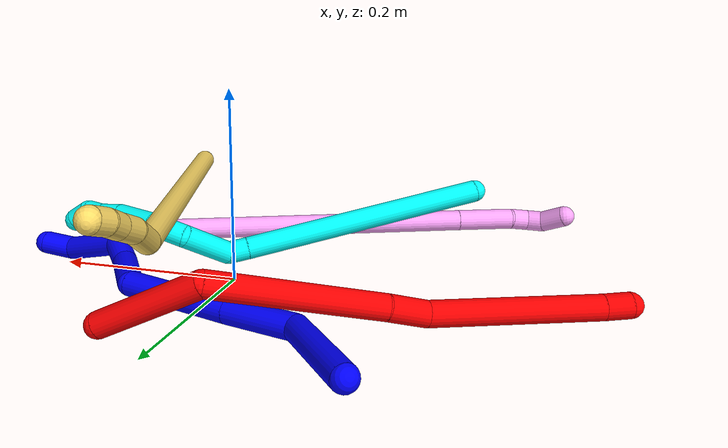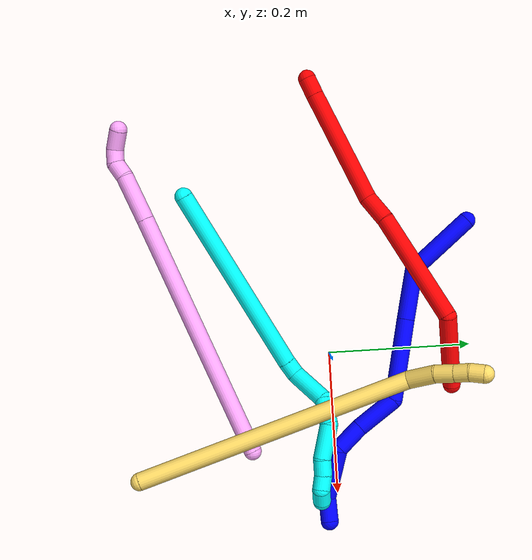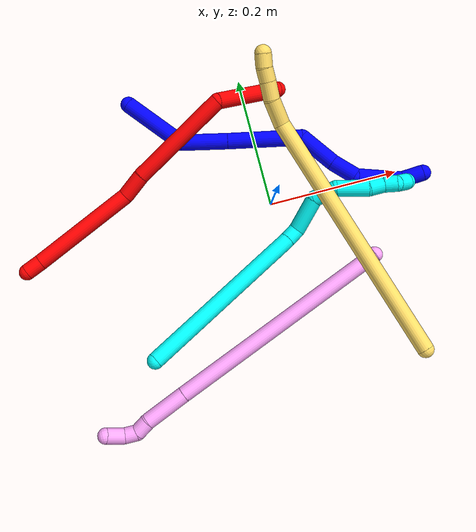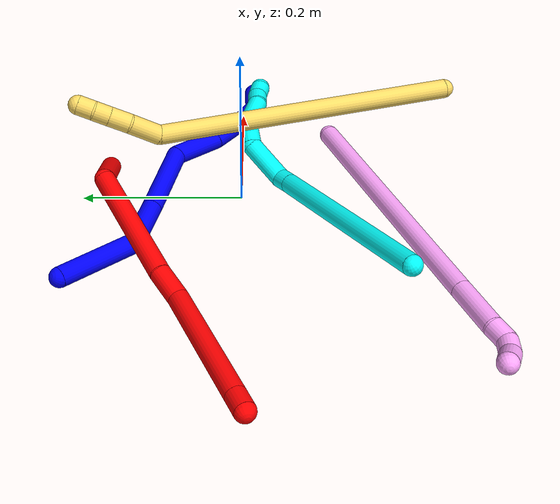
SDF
<sdf version="1.7">
 <world name="default">
  <plugin name="TubeGeneratorPlugin" filename="libtube_generator_plugin.so"/>
  <model name="photoneo_s_sensor">
   <static>1</static>
   <pose>0 0 2 1.57079 1.57079 3.14159</pose>
   <link name="link">
    <inertial><mass>0.1</mass></inertial>
    <sensor name="sensor" type="depth">
     <update_rate>30</update_rate>
     <camera>
      <horizontal_fov>1.22</horizontal_fov>
      <image><width>1920</width><height>1200</height><format>B8G8R8</format></image>
      <clip><near>0.1</near><far>4</far></clip>
      <depth_camera><output>points</output></depth_camera>
     </camera>
     <plugin name="camera_plugin" filename="libgazebo_ros_depth_camera.so">
      <baseline>0.2</baseline>
      <alwaysOn>1</alwaysOn>
      <updateRate>0.0</updateRate>
      <cameraName>camera_ir</cameraName>
      <imageTopicName>/camera/color/image_raw</imageTopicName>
      <cameraInfoTopicName>/camera/color/camera_info</cameraInfoTopicName>
      <depthImageTopicName>/camera/depth/image_raw</depthImageTopicName>
      <depthImageCameraInfoTopicName>/camera/depth/camera_info</depthImageCameraInfoTopicName>
      <pointCloudTopicName>/camera/depth/points</pointCloudTopicName>
      <frameName>fr_optical</frameName>
      <pointCloudCutoff>0.1</pointCloudCutoff>
      <pointCloudCutoffMax>2.0</pointCloudCutoffMax>
      <distortionK1>0</distortionK1>
      <distortionK2>0</distortionK2>
      <distortionK3>0</distortionK3>
      <distortionT1>0</distortionT1>
      <distortionT2>0</distortionT2>
      <CxPrime>0</CxPrime>
      <Cx>0</Cx>
      <Cy>0</Cy>
      <focalLength>0</focalLength>
      <hackBaseline>0</hackBaseline>
     </plugin>
    </sensor>
   </link>
  </model>
  <gravity>0 0 -9.8</gravity>
  <magnetic_field>6e-06 2.3e-05 -4.2e-05</magnetic_field>
  <atmosphere type="adiabatic"/>
  <physics name="default_physics" default="0" type="ode">
   <max_step_size>0.003</max_step_size>
   <real_time_factor>1</real_time_factor>
   <real_time_update_rate>1000</real_time_update_rate>
   <max_contacts>10000</max_contacts>
   <ode>
    <solver>
     <type>quick</type>
     <iters>100</iters>
     <sor>1.3</sor>
     <use_dynamic_moi_rescaling>0</use_dynamic_moi_rescaling>
    </solver>
    <constraints>
     <contact_max_correcting_vel>0</contact_max_correcting_vel>
     <contact_surface_layer>0.001</contact_surface_layer>
     <cfm>0</cfm>
     <erp>0.2</erp>
    </constraints>
   </ode>
  </physics>
  <scene><ambient>0.4 0.4 0.4 1</ambient><background>0.7 0.7 0.7 1</background><shadows>0</shadows></scene>
  <audio><device>default</device></audio>
  <spherical_coordinates>
   <surface_model>EARTH_WGS84</surface_model>
   <latitude_deg>0</latitude_deg>
   <longitude_deg>0</longitude_deg>
   <elevation>0</elevation>
   <heading_deg>0</heading_deg>
  </spherical_coordinates>
  <model name="bin">
   <static>1</static>
   <link name="bottom">
    <collision name="collision-bottom">
     <pose>0 0 -0.01 0 -0 0</pose>
     <geometry><box><size>0.8 0.6 0.02</size></box></geometry>
     <surface>
      <friction><ode><mu>100</mu><mu2>100</mu2></ode></friction>
      <contact><collide_bitmask>65535</collide_bitmask></contact>
     </surface>
    </collision>
   </link>
   <link name="west_wall">
    <collision name="collision-west_wall">
     <pose>-0.41 0 0.1 0 -0 0</pose>
     <geometry><box><size>0.02 0.6 0.2</size></box></geometry>
     <surface>
      <friction><ode><mu>100</mu><mu2>100</mu2></ode></friction>
      <contact><collide_bitmask>65535</collide_bitmask></contact>
     </surface>
    </collision>
   </link>
   <link name="east_wall">
    <collision name="collision-east_wall">
     <pose>0.41 0 0.1 0 -0 0</pose>
     <geometry><box><size>0.02 0.6 0.2</size></box></geometry>
     <surface>
      <friction><ode><mu>100</mu><mu2>100</mu2></ode></friction>
      <contact><collide_bitmask>65535</collide_bitmask></contact>
     </surface>
    </collision>
   </link>
   <link name="south_wall">
    <collision name="collision-south_wall">
     <pose>0 -0.31 0.1 0 -0 0</pose>
     <geometry><box><size>0.8 0.02 0.2</size></box></geometry>
     <surface>
      <friction><ode><mu>100</mu><mu2>100</mu2></ode></friction>
      <contact><collide_bitmask>65535</collide_bitmask></contact>
     </surface>
    </collision>
   </link>
   <link name="north_wall">
    <collision name="collision-north_wall">
     <pose>0 0.31 0.1 0 -0 0</pose>
     <geometry><box><size>0.8 0.02 0.2</size></box></geometry>
     <surface>
      <friction><ode><mu>100</mu><mu2>100</mu2></ode></friction>
      <contact><collide_bitmask>65535</collide_bitmask></contact>
     </surface>
    </collision>
   </link>
  </model>
  <model name="1">
   <static>0</static>
   <link name="1">
    <collision name="collision-cylinder-e_1_1_4">
     <pose>-0.00087 0.023912 0.044408 -0.493947 -0.017249 0.004349</pose>
     <geometry><cylinder><radius>0.0125</radius><length>0.100889</length></cylinder></geometry>
     <surface>
      <friction><ode><mu>1.16</mu><mu2>1.16</mu2><slip1>0</slip1><slip2>0</slip2></ode></friction>
      <contact><ode><kp>1e+06</kp><kd>1</kd><max_vel>0</max_vel><min_depth>0.001</min_depth></ode></contact>
     </surface>
    </collision>
    <visual name="visual-cylinder-e_1_1_4">
     <pose>-0.00087 0.023912 0.044408 -0.493947 -0.017249 0.004349</pose>
     <geometry><cylinder><radius>0.0125</radius><length>0.100889</length></cylinder></geometry>
     <material><ambient>0 0 1 1</ambient></material>
    </visual>
    <collision name="collision-cylinder-e_2_4_5">
     <pose>0.019867 0.06286 0.113546 -0.546276 0.641294 -0.185539</pose>
     <geometry><cylinder><radius>0.0125</radius><length>0.072235</length></cylinder></geometry>
     <surface>
      <friction><ode><mu>1.16</mu><mu2>1.16</mu2><slip1>0</slip1><slip2>0</slip2></ode></friction>
      <contact><ode><kp>1e+06</kp><kd>1</kd><max_vel>0</max_vel><min_depth>0.001</min_depth></ode></contact>
     </surface>
    </collision>
    <visual name="visual-cylinder-e_2_4_5">
     <pose>0.019867 0.06286 0.113546 -0.546276 0.641294 -0.185539</pose>
     <geometry><cylinder><radius>0.0125</radius><length>0.072235</length></cylinder></geometry>
     <material><ambient>0 0 1 1</ambient></material>
    </visual>
    <collision name="collision-cylinder-e_3_5_6">
     <pose>0.076193 0.103438 0.176311 -0.591362 0.648483 -0.20405</pose>
     <geometry><cylinder><radius>0.0125</radius><length>0.114971</length></cylinder></geometry>
     <surface>
      <friction><ode><mu>1.16</mu><mu2>1.16</mu2><slip1>0</slip1><slip2>0</slip2></ode></friction>
      <contact><ode><kp>1e+06</kp><kd>1</kd><max_vel>0</max_vel><min_depth>0.001</min_depth></ode></contact>
     </surface>
    </collision>
    <visual name="visual-cylinder-e_3_5_6">
     <pose>0.076193 0.103438 0.176311 -0.591362 0.648483 -0.20405</pose>
     <geometry><cylinder><radius>0.0125</radius><length>0.114971</length></cylinder></geometry>
     <material><ambient>0 0 1 1</ambient></material>
    </visual>
    <collision name="collision-cylinder-e_4_6_7">
     <pose>0.108033 0.144594 0.240839 -0.532594 -0.093386 0.025491</pose>
     <geometry><cylinder><radius>0.0125</radius><length>0.061772</length></cylinder></geometry>
     <surface>
      <friction><ode><mu>1.16</mu><mu2>1.16</mu2><slip1>0</slip1><slip2>0</slip2></ode></friction>
      <contact><ode><kp>1e+06</kp><kd>1</kd><max_vel>0</max_vel><min_depth>0.001</min_depth></ode></contact>
     </surface>
    </collision>
    <visual name="visual-cylinder-e_4_6_7">
     <pose>0.108033 0.144594 0.240839 -0.532594 -0.093386 0.025491</pose>
     <geometry><cylinder><radius>0.0125</radius><length>0.061772</length></cylinder></geometry>
     <material><ambient>0 0 1 1</ambient></material>
    </visual>
    <collision name="collision-cylinder-e_5_7_8">
     <pose>0.10535 0.173779 0.28317 -0.708402 0.009446 -0.003493</pose>
     <geometry><cylinder><radius>0.0125</radius><length>0.041716</length></cylinder></geometry>
     <surface>
      <friction><ode><mu>1.16</mu><mu2>1.16</mu2><slip1>0</slip1><slip2>0</slip2></ode></friction>
      <contact><ode><kp>1e+06</kp><kd>1</kd><max_vel>0</max_vel><min_depth>0.001</min_depth></ode></contact>
     </surface>
    </collision>
    <visual name="visual-cylinder-e_5_7_8">
     <pose>0.10535 0.173779 0.28317 -0.708402 0.009446 -0.003493</pose>
     <geometry><cylinder><radius>0.0125</radius><length>0.041716</length></cylinder></geometry>
     <material><ambient>0 0 1 1</ambient></material>
    </visual>
    <collision name="collision-cylinder-e_6_8_9">
     <pose>0.125912 0.194745 0.329259 -0.239794 0.579161 -0.071761</pose>
     <geometry><cylinder><radius>0.0125</radius><length>0.074419</length></cylinder></geometry>
     <surface>
      <friction><ode><mu>1.16</mu><mu2>1.16</mu2><slip1>0</slip1><slip2>0</slip2></ode></friction>
      <contact><ode><kp>1e+06</kp><kd>1</kd><max_vel>0</max_vel><min_depth>0.001</min_depth></ode></contact>
     </surface>
    </collision>
    <visual name="visual-cylinder-e_6_8_9">
     <pose>0.125912 0.194745 0.329259 -0.239794 0.579161 -0.071761</pose>
     <geometry><cylinder><radius>0.0125</radius><length>0.074419</length></cylinder></geometry>
     <material><ambient>0 0 1 1</ambient></material>
    </visual>
    <collision name="collision-cylinder-e_7_9_2">
     <pose>0.159482 0.209486 0.367299 -0.755956 0.889493 -0.374058</pose>
     <geometry><cylinder><radius>0.0125</radius><length>0.033999</length></cylinder></geometry>
     <surface>
      <friction><ode><mu>1.16</mu><mu2>1.16</mu2><slip1>0</slip1><slip2>0</slip2></ode></friction>
      <contact><ode><kp>1e+06</kp><kd>1</kd><max_vel>0</max_vel><min_depth>0.001</min_depth></ode></contact>
     </surface>
    </collision>
    <visual name="visual-cylinder-e_7_9_2">
     <pose>0.159482 0.209486 0.367299 -0.755956 0.889493 -0.374058</pose>
     <geometry><cylinder><radius>0.0125</radius><length>0.033999</length></cylinder></geometry>
     <material><ambient>0 0 1 1</ambient></material>
    </visual>
    <collision name="collision-sphere-2">
     <pose>0.172687 0.21683 0.375089 0 -0 0</pose>
     <geometry><sphere><radius>0.0125</radius></sphere></geometry>
     <surface>
      <friction><ode><mu>1.16</mu><mu2>1.16</mu2><slip1>0</slip1><slip2>0</slip2></ode></friction>
      <contact><ode><kp>1e+06</kp><kd>1</kd><max_vel>0</max_vel><min_depth>0.001</min_depth></ode></contact>
     </surface>
    </collision>
    <visual name="visual-sphere-2">
     <pose>0.172687 0.21683 0.375089 0 -0 0</pose>
     <geometry><sphere><radius>0.0125</radius></sphere></geometry>
     <material><ambient>0 0 1 1</ambient></material>
    </visual>
    <collision name="collision-sphere-9">
     <pose>0.146278 0.202141 0.359509 0 -0 0</pose>
     <geometry><sphere><radius>0.0125</radius></sphere></geometry>
     <surface>
      <friction><ode><mu>1.16</mu><mu2>1.16</mu2><slip1>0</slip1><slip2>0</slip2></ode></friction>
      <contact><ode><kp>1e+06</kp><kd>1</kd><max_vel>0</max_vel><min_depth>0.001</min_depth></ode></contact>
     </surface>
    </collision>
    <visual name="visual-sphere-9">
     <pose>0.146278 0.202141 0.359509 0 -0 0</pose>
     <geometry><sphere><radius>0.0125</radius></sphere></geometry>
     <material><ambient>0 0 1 1</ambient></material>
    </visual>
    <collision name="collision-sphere-4">
     <pose>-0.00174 0.047825 0.088816 0 -0 0</pose>
     <geometry><sphere><radius>0.0125</radius></sphere></geometry>
     <surface>
      <friction><ode><mu>1.16</mu><mu2>1.16</mu2><slip1>0</slip1><slip2>0</slip2></ode></friction>
      <contact><ode><kp>1e+06</kp><kd>1</kd><max_vel>0</max_vel><min_depth>0.001</min_depth></ode></contact>
     </surface>
    </collision>
    <visual name="visual-sphere-4">
     <pose>-0.00174 0.047825 0.088816 0 -0 0</pose>
     <geometry><sphere><radius>0.0125</radius></sphere></geometry>
     <material><ambient>0 0 1 1</ambient></material>
    </visual>
    <collision name="collision-sphere-1">
     <geometry><sphere><radius>0.0125</radius></sphere></geometry>
     <surface>
      <friction><ode><mu>1.16</mu><mu2>1.16</mu2><slip1>0</slip1><slip2>0</slip2></ode></friction>
      <contact><ode><kp>1e+06</kp><kd>1</kd><max_vel>0</max_vel><min_depth>0.001</min_depth></ode></contact>
     </surface>
    </collision>
    <visual name="visual-sphere-1">
     <geometry><sphere><radius>0.0125</radius></sphere></geometry>
     <material><ambient>0 0 1 1</ambient></material>
    </visual>
    <collision name="collision-sphere-8">
     <pose>0.105547 0.187349 0.299009 0 -0 0</pose>
     <geometry><sphere><radius>0.0125</radius></sphere></geometry>
     <surface>
      <friction><ode><mu>1.16</mu><mu2>1.16</mu2><slip1>0</slip1><slip2>0</slip2></ode></friction>
      <contact><ode><kp>1e+06</kp><kd>1</kd><max_vel>0</max_vel><min_depth>0.001</min_depth></ode></contact>
     </surface>
    </collision>
    <visual name="visual-sphere-8">
     <pose>0.105547 0.187349 0.299009 0 -0 0</pose>
     <geometry><sphere><radius>0.0125</radius></sphere></geometry>
     <material><ambient>0 0 1 1</ambient></material>
    </visual>
    <collision name="collision-sphere-5">
     <pose>0.041473 0.077896 0.138276 0 -0 0</pose>
     <geometry><sphere><radius>0.0125</radius></sphere></geometry>
     <surface>
      <friction><ode><mu>1.16</mu><mu2>1.16</mu2><slip1>0</slip1><slip2>0</slip2></ode></friction>
      <contact><ode><kp>1e+06</kp><kd>1</kd><max_vel>0</max_vel><min_depth>0.001</min_depth></ode></contact>
     </surface>
    </collision>
    <visual name="visual-sphere-5">
     <pose>0.041473 0.077896 0.138276 0 -0 0</pose>
     <geometry><sphere><radius>0.0125</radius></sphere></geometry>
     <material><ambient>0 0 1 1</ambient></material>
    </visual>
    <collision name="collision-sphere-6">
     <pose>0.110913 0.12898 0.214347 0 -0 0</pose>
     <geometry><sphere><radius>0.0125</radius></sphere></geometry>
     <surface>
      <friction><ode><mu>1.16</mu><mu2>1.16</mu2><slip1>0</slip1><slip2>0</slip2></ode></friction>
      <contact><ode><kp>1e+06</kp><kd>1</kd><max_vel>0</max_vel><min_depth>0.001</min_depth></ode></contact>
     </surface>
    </collision>
    <visual name="visual-sphere-6">
     <pose>0.110913 0.12898 0.214347 0 -0 0</pose>
     <geometry><sphere><radius>0.0125</radius></sphere></geometry>
     <material><ambient>0 0 1 1</ambient></material>
    </visual>
    <collision name="collision-sphere-7">
     <pose>0.105153 0.160209 0.267331 0 -0 0</pose>
     <geometry><sphere><radius>0.0125</radius></sphere></geometry>
     <surface>
      <friction><ode><mu>1.16</mu><mu2>1.16</mu2><slip1>0</slip1><slip2>0</slip2></ode></friction>
      <contact><ode><kp>1e+06</kp><kd>1</kd><max_vel>0</max_vel><min_depth>0.001</min_depth></ode></contact>
     </surface>
    </collision>
    <visual name="visual-sphere-7">
     <pose>0.105153 0.160209 0.267331 0 -0 0</pose>
     <geometry><sphere><radius>0.0125</radius></sphere></geometry>
     <material><ambient>0 0 1 1</ambient></material>
    </visual>
    <inertial>
     <pose>0.071936 0.113283 0.193267 0 -0 0</pose>
     <mass>0.5</mass>
     <inertia>
      <ixx>0.000267</ixx>
      <ixy>0</ixy>
      <ixz>0</ixz>
      <iyy>0.000279</iyy>
      <iyz>0</iyz>
      <izz>-0.000231</izz>
     </inertia>
    </inertial>
   </link>
   <pose>-0.174652 0.20507 0.012415 2.06895 0.045889 0.702004</pose>
  </model>
  <model name="2">
   <static>0</static>
   <link name="2">
    <collision name="collision-cylinder-e_1_1_4">
     <pose>-0.026097 -0.010655 0.046002 0.227601 -0.504883 -0.058946</pose>
     <geometry><cylinder><radius>0.0125</radius><length>0.107903</length></cylinder></geometry>
     <surface>
      <friction><ode><mu>1.16</mu><mu2>1.16</mu2><slip1>0</slip1><slip2>0</slip2></ode></friction>
      <contact><ode><kp>1e+06</kp><kd>1</kd><max_vel>0</max_vel><min_depth>0.001</min_depth></ode></contact>
     </surface>
    </collision>
    <visual name="visual-cylinder-e_1_1_4">
     <pose>-0.026097 -0.010655 0.046002 0.227601 -0.504883 -0.058946</pose>
     <geometry><cylinder><radius>0.0125</radius><length>0.107903</length></cylinder></geometry>
     <material><ambient>1 0 0 1</ambient></material>
    </visual>
    <collision name="collision-cylinder-e_2_4_5">
     <pose>-0.041312 -0.003981 0.17047 -0.217353 0.134598 -0.014707</pose>
     <geometry><cylinder><radius>0.0125</radius><length>0.16218</length></cylinder></geometry>
     <surface>
      <friction><ode><mu>1.16</mu><mu2>1.16</mu2><slip1>0</slip1><slip2>0</slip2></ode></friction>
      <contact><ode><kp>1e+06</kp><kd>1</kd><max_vel>0</max_vel><min_depth>0.001</min_depth></ode></contact>
     </surface>
    </collision>
    <visual name="visual-cylinder-e_2_4_5">
     <pose>-0.041312 -0.003981 0.17047 -0.217353 0.134598 -0.014707</pose>
     <geometry><cylinder><radius>0.0125</radius><length>0.16218</length></cylinder></geometry>
     <material><ambient>1 0 0 1</ambient></material>
    </visual>
    <collision name="collision-cylinder-e_3_5_6">
     <pose>-0.026341 0.0198 0.267381 -0.336502 0.206251 -0.035154</pose>
     <geometry><cylinder><radius>0.0125</radius><length>0.039929</length></cylinder></geometry>
     <surface>
      <friction><ode><mu>1.16</mu><mu2>1.16</mu2><slip1>0</slip1><slip2>0</slip2></ode></friction>
      <contact><ode><kp>1e+06</kp><kd>1</kd><max_vel>0</max_vel><min_depth>0.001</min_depth></ode></contact>
     </surface>
    </collision>
    <visual name="visual-cylinder-e_3_5_6">
     <pose>-0.026341 0.0198 0.267381 -0.336502 0.206251 -0.035154</pose>
     <geometry><cylinder><radius>0.0125</radius><length>0.039929</length></cylinder></geometry>
     <material><ambient>1 0 0 1</ambient></material>
    </visual>
    <collision name="collision-cylinder-e_4_6_7">
     <pose>-0.027352 0.037766 0.367041 -0.140834 -0.062082 0.00438</pose>
     <geometry><cylinder><radius>0.0125</radius><length>0.16437</length></cylinder></geometry>
     <surface>
      <friction><ode><mu>1.16</mu><mu2>1.16</mu2><slip1>0</slip1><slip2>0</slip2></ode></friction>
      <contact><ode><kp>1e+06</kp><kd>1</kd><max_vel>0</max_vel><min_depth>0.001</min_depth></ode></contact>
     </surface>
    </collision>
    <visual name="visual-cylinder-e_4_6_7">
     <pose>-0.027352 0.037766 0.367041 -0.140834 -0.062082 0.00438</pose>
     <geometry><cylinder><radius>0.0125</radius><length>0.16437</length></cylinder></geometry>
     <material><ambient>1 0 0 1</ambient></material>
    </visual>
    <collision name="collision-cylinder-e_5_7_2">
     <pose>-0.033882 0.050769 0.460897 -0.117272 -0.111989 0.006581</pose>
     <geometry><cylinder><radius>0.0125</radius><length>0.025619</length></cylinder></geometry>
     <surface>
      <friction><ode><mu>1.16</mu><mu2>1.16</mu2><slip1>0</slip1><slip2>0</slip2></ode></friction>
      <contact><ode><kp>1e+06</kp><kd>1</kd><max_vel>0</max_vel><min_depth>0.001</min_depth></ode></contact>
     </surface>
    </collision>
    <visual name="visual-cylinder-e_5_7_2">
     <pose>-0.033882 0.050769 0.460897 -0.117272 -0.111989 0.006581</pose>
     <geometry><cylinder><radius>0.0125</radius><length>0.025619</length></cylinder></geometry>
     <material><ambient>1 0 0 1</ambient></material>
    </visual>
    <collision name="collision-sphere-2">
     <pose>-0.035314 0.052259 0.473539 0 -0 0</pose>
     <geometry><sphere><radius>0.0125</radius></sphere></geometry>
     <surface>
      <friction><ode><mu>1.16</mu><mu2>1.16</mu2><slip1>0</slip1><slip2>0</slip2></ode></friction>
      <contact><ode><kp>1e+06</kp><kd>1</kd><max_vel>0</max_vel><min_depth>0.001</min_depth></ode></contact>
     </surface>
    </collision>
    <visual name="visual-sphere-2">
     <pose>-0.035314 0.052259 0.473539 0 -0 0</pose>
     <geometry><sphere><radius>0.0125</radius></sphere></geometry>
     <material><ambient>1 0 0 1</ambient></material>
    </visual>
    <collision name="collision-sphere-7">
     <pose>-0.032451 0.04928 0.448255 0 -0 0</pose>
     <geometry><sphere><radius>0.0125</radius></sphere></geometry>
     <surface>
      <friction><ode><mu>1.16</mu><mu2>1.16</mu2><slip1>0</slip1><slip2>0</slip2></ode></friction>
      <contact><ode><kp>1e+06</kp><kd>1</kd><max_vel>0</max_vel><min_depth>0.001</min_depth></ode></contact>
     </surface>
    </collision>
    <visual name="visual-sphere-7">
     <pose>-0.032451 0.04928 0.448255 0 -0 0</pose>
     <geometry><sphere><radius>0.0125</radius></sphere></geometry>
     <material><ambient>1 0 0 1</ambient></material>
    </visual>
    <collision name="collision-sphere-6">
     <pose>-0.022253 0.026252 0.285826 0 -0 0</pose>
     <geometry><sphere><radius>0.0125</radius></sphere></geometry>
     <surface>
      <friction><ode><mu>1.16</mu><mu2>1.16</mu2><slip1>0</slip1><slip2>0</slip2></ode></friction>
      <contact><ode><kp>1e+06</kp><kd>1</kd><max_vel>0</max_vel><min_depth>0.001</min_depth></ode></contact>
     </surface>
    </collision>
    <visual name="visual-sphere-6">
     <pose>-0.022253 0.026252 0.285826 0 -0 0</pose>
     <geometry><sphere><radius>0.0125</radius></sphere></geometry>
     <material><ambient>1 0 0 1</ambient></material>
    </visual>
    <collision name="collision-sphere-5">
     <pose>-0.03043 0.013347 0.248936 0 -0 0</pose>
     <geometry><sphere><radius>0.0125</radius></sphere></geometry>
     <surface>
      <friction><ode><mu>1.16</mu><mu2>1.16</mu2><slip1>0</slip1><slip2>0</slip2></ode></friction>
      <contact><ode><kp>1e+06</kp><kd>1</kd><max_vel>0</max_vel><min_depth>0.001</min_depth></ode></contact>
     </surface>
    </collision>
    <visual name="visual-sphere-5">
     <pose>-0.03043 0.013347 0.248936 0 -0 0</pose>
     <geometry><sphere><radius>0.0125</radius></sphere></geometry>
     <material><ambient>1 0 0 1</ambient></material>
    </visual>
    <collision name="collision-sphere-1">
     <geometry><sphere><radius>0.0125</radius></sphere></geometry>
     <surface>
      <friction><ode><mu>1.16</mu><mu2>1.16</mu2><slip1>0</slip1><slip2>0</slip2></ode></friction>
      <contact><ode><kp>1e+06</kp><kd>1</kd><max_vel>0</max_vel><min_depth>0.001</min_depth></ode></contact>
     </surface>
    </collision>
    <visual name="visual-sphere-1">
     <geometry><sphere><radius>0.0125</radius></sphere></geometry>
     <material><ambient>1 0 0 1</ambient></material>
    </visual>
    <collision name="collision-sphere-4">
     <pose>-0.052193 -0.02131 0.092004 0 -0 0</pose>
     <geometry><sphere><radius>0.0125</radius></sphere></geometry>
     <surface>
      <friction><ode><mu>1.16</mu><mu2>1.16</mu2><slip1>0</slip1><slip2>0</slip2></ode></friction>
      <contact><ode><kp>1e+06</kp><kd>1</kd><max_vel>0</max_vel><min_depth>0.001</min_depth></ode></contact>
     </surface>
    </collision>
    <visual name="visual-sphere-4">
     <pose>-0.052193 -0.02131 0.092004 0 -0 0</pose>
     <geometry><sphere><radius>0.0125</radius></sphere></geometry>
     <material><ambient>1 0 0 1</ambient></material>
    </visual>
    <inertial>
     <pose>-0.031863 0.013007 0.23085 0 -0 0</pose>
     <mass>0.5</mass>
     <inertia>
      <ixx>0.000826</ixx>
      <ixy>0</ixy>
      <ixz>0</ixz>
      <iyy>0.000836</iyy>
      <iyz>0</iyz>
      <izz>-4.8e-05</izz>
     </inertia>
    </inertial>
   </link>
   <pose>0.055166 0.170048 0.011496 -2.93044 1.50041 0.482062</pose>
  </model>
  <model name="3">
   <static>0</static>
   <link name="3">
    <collision name="collision-cylinder-e_1_1_4">
     <pose>0.108111 -0.076705 0.030767 1.18934 0.918111 0.645232</pose>
     <geometry><cylinder><radius>0.0125</radius><length>0.272164</length></cylinder></geometry>
     <surface>
      <friction><ode><mu>1.16</mu><mu2>1.16</mu2><slip1>0</slip1><slip2>0</slip2></ode></friction>
      <contact><ode><kp>1e+06</kp><kd>1</kd><max_vel>0</max_vel><min_depth>0.001</min_depth></ode></contact>
     </surface>
    </collision>
    <visual name="visual-cylinder-e_1_1_4">
     <pose>0.108111 -0.076705 0.030767 1.18934 0.918111 0.645232</pose>
     <geometry><cylinder><radius>0.0125</radius><length>0.272164</length></cylinder></geometry>
     <material><ambient>0.003922 1 0.996078 1</ambient></material>
    </visual>
    <collision name="collision-cylinder-e_2_4_5">
     <pose>0.224939 -0.160191 0.063226 1.3263 0.895009 0.717444</pose>
     <geometry><cylinder><radius>0.0125</radius><length>0.022344</length></cylinder></geometry>
     <surface>
      <friction><ode><mu>1.16</mu><mu2>1.16</mu2><slip1>0</slip1><slip2>0</slip2></ode></friction>
      <contact><ode><kp>1e+06</kp><kd>1</kd><max_vel>0</max_vel><min_depth>0.001</min_depth></ode></contact>
     </surface>
    </collision>
    <visual name="visual-cylinder-e_2_4_5">
     <pose>0.224939 -0.160191 0.063226 1.3263 0.895009 0.717444</pose>
     <geometry><cylinder><radius>0.0125</radius><length>0.022344</length></cylinder></geometry>
     <material><ambient>0.003922 1 0.996078 1</ambient></material>
    </visual>
    <collision name="collision-cylinder-e_3_5_6">
     <pose>0.254983 -0.179483 0.050707 2.4197 0.844772 1.74439</pose>
     <geometry><cylinder><radius>0.0125</radius><length>0.057037</length></cylinder></geometry>
     <surface>
      <friction><ode><mu>1.16</mu><mu2>1.16</mu2><slip1>0</slip1><slip2>0</slip2></ode></friction>
      <contact><ode><kp>1e+06</kp><kd>1</kd><max_vel>0</max_vel><min_depth>0.001</min_depth></ode></contact>
     </surface>
    </collision>
    <visual name="visual-cylinder-e_3_5_6">
     <pose>0.254983 -0.179483 0.050707 2.4197 0.844772 1.74439</pose>
     <geometry><cylinder><radius>0.0125</radius><length>0.057037</length></cylinder></geometry>
     <material><ambient>0.003922 1 0.996078 1</ambient></material>
    </visual>
    <collision name="collision-cylinder-e_4_6_7">
     <pose>0.294533 -0.193361 0.034979 2.40841 1.4592 2.33045</pose>
     <geometry><cylinder><radius>0.0125</radius><length>0.036676</length></cylinder></geometry>
     <surface>
      <friction><ode><mu>1.16</mu><mu2>1.16</mu2><slip1>0</slip1><slip2>0</slip2></ode></friction>
      <contact><ode><kp>1e+06</kp><kd>1</kd><max_vel>0</max_vel><min_depth>0.001</min_depth></ode></contact>
     </surface>
    </collision>
    <visual name="visual-cylinder-e_4_6_7">
     <pose>0.294533 -0.193361 0.034979 2.40841 1.4592 2.33045</pose>
     <geometry><cylinder><radius>0.0125</radius><length>0.036676</length></cylinder></geometry>
     <material><ambient>0.003922 1 0.996078 1</ambient></material>
    </visual>
    <collision name="collision-cylinder-e_5_7_8">
     <pose>0.335274 -0.190158 0.041084 -0.540082 1.19484 -0.372288</pose>
     <geometry><cylinder><radius>0.0125</radius><length>0.048415</length></cylinder></geometry>
     <surface>
      <friction><ode><mu>1.16</mu><mu2>1.16</mu2><slip1>0</slip1><slip2>0</slip2></ode></friction>
      <contact><ode><kp>1e+06</kp><kd>1</kd><max_vel>0</max_vel><min_depth>0.001</min_depth></ode></contact>
     </surface>
    </collision>
    <visual name="visual-cylinder-e_5_7_8">
     <pose>0.335274 -0.190158 0.041084 -0.540082 1.19484 -0.372288</pose>
     <geometry><cylinder><radius>0.0125</radius><length>0.048415</length></cylinder></geometry>
     <material><ambient>0.003922 1 0.996078 1</ambient></material>
    </visual>
    <collision name="collision-cylinder-e_6_8_9">
     <pose>0.368467 -0.186808 0.052424 0.317417 1.21959 0.222707</pose>
     <geometry><cylinder><radius>0.0125</radius><length>0.022741</length></cylinder></geometry>
     <surface>
      <friction><ode><mu>1.16</mu><mu2>1.16</mu2><slip1>0</slip1><slip2>0</slip2></ode></friction>
      <contact><ode><kp>1e+06</kp><kd>1</kd><max_vel>0</max_vel><min_depth>0.001</min_depth></ode></contact>
     </surface>
    </collision>
    <visual name="visual-cylinder-e_6_8_9">
     <pose>0.368467 -0.186808 0.052424 0.317417 1.21959 0.222707</pose>
     <geometry><cylinder><radius>0.0125</radius><length>0.022741</length></cylinder></geometry>
     <material><ambient>0.003922 1 0.996078 1</ambient></material>
    </visual>
    <collision name="collision-cylinder-e_7_9_10">
     <pose>0.388674 -0.18662 0.058973 -0.461777 1.25029 -0.336117</pose>
     <geometry><cylinder><radius>0.0125</radius><length>0.020083</length></cylinder></geometry>
     <surface>
      <friction><ode><mu>1.16</mu><mu2>1.16</mu2><slip1>0</slip1><slip2>0</slip2></ode></friction>
      <contact><ode><kp>1e+06</kp><kd>1</kd><max_vel>0</max_vel><min_depth>0.001</min_depth></ode></contact>
     </surface>
    </collision>
    <visual name="visual-cylinder-e_7_9_10">
     <pose>0.388674 -0.18662 0.058973 -0.461777 1.25029 -0.336117</pose>
     <geometry><cylinder><radius>0.0125</radius><length>0.020083</length></cylinder></geometry>
     <material><ambient>0.003922 1 0.996078 1</ambient></material>
    </visual>
    <collision name="collision-cylinder-e_8_10_2">
     <pose>0.404883 -0.188161 0.069026 0.387983 0.708056 0.14497</pose>
     <geometry><cylinder><radius>0.0125</radius><length>0.020539</length></cylinder></geometry>
     <surface>
      <friction><ode><mu>1.16</mu><mu2>1.16</mu2><slip1>0</slip1><slip2>0</slip2></ode></friction>
      <contact><ode><kp>1e+06</kp><kd>1</kd><max_vel>0</max_vel><min_depth>0.001</min_depth></ode></contact>
     </surface>
    </collision>
    <visual name="visual-cylinder-e_8_10_2">
     <pose>0.404883 -0.188161 0.069026 0.387983 0.708056 0.14497</pose>
     <geometry><cylinder><radius>0.0125</radius><length>0.020539</length></cylinder></geometry>
     <material><ambient>0.003922 1 0.996078 1</ambient></material>
    </visual>
    <collision name="collision-sphere-2">
     <pose>0.411562 -0.191113 0.076247 0 -0 0</pose>
     <geometry><sphere><radius>0.0125</radius></sphere></geometry>
     <surface>
      <friction><ode><mu>1.16</mu><mu2>1.16</mu2><slip1>0</slip1><slip2>0</slip2></ode></friction>
      <contact><ode><kp>1e+06</kp><kd>1</kd><max_vel>0</max_vel><min_depth>0.001</min_depth></ode></contact>
     </surface>
    </collision>
    <visual name="visual-sphere-2">
     <pose>0.411562 -0.191113 0.076247 0 -0 0</pose>
     <geometry><sphere><radius>0.0125</radius></sphere></geometry>
     <material><ambient>0.003922 1 0.996078 1</ambient></material>
    </visual>
    <collision name="collision-sphere-10">
     <pose>0.398205 -0.18521 0.061805 0 -0 0</pose>
     <geometry><sphere><radius>0.0125</radius></sphere></geometry>
     <surface>
      <friction><ode><mu>1.16</mu><mu2>1.16</mu2><slip1>0</slip1><slip2>0</slip2></ode></friction>
      <contact><ode><kp>1e+06</kp><kd>1</kd><max_vel>0</max_vel><min_depth>0.001</min_depth></ode></contact>
     </surface>
    </collision>
    <visual name="visual-sphere-10">
     <pose>0.398205 -0.18521 0.061805 0 -0 0</pose>
     <geometry><sphere><radius>0.0125</radius></sphere></geometry>
     <material><ambient>0.003922 1 0.996078 1</ambient></material>
    </visual>
    <collision name="collision-sphere-9">
     <pose>0.379144 -0.188029 0.05614 0 -0 0</pose>
     <geometry><sphere><radius>0.0125</radius></sphere></geometry>
     <surface>
      <friction><ode><mu>1.16</mu><mu2>1.16</mu2><slip1>0</slip1><slip2>0</slip2></ode></friction>
      <contact><ode><kp>1e+06</kp><kd>1</kd><max_vel>0</max_vel><min_depth>0.001</min_depth></ode></contact>
     </surface>
    </collision>
    <visual name="visual-sphere-9">
     <pose>0.379144 -0.188029 0.05614 0 -0 0</pose>
     <geometry><sphere><radius>0.0125</radius></sphere></geometry>
     <material><ambient>0.003922 1 0.996078 1</ambient></material>
    </visual>
    <collision name="collision-sphere-4">
     <pose>0.216223 -0.153411 0.061534 0 -0 0</pose>
     <geometry><sphere><radius>0.0125</radius></sphere></geometry>
     <surface>
      <friction><ode><mu>1.16</mu><mu2>1.16</mu2><slip1>0</slip1><slip2>0</slip2></ode></friction>
      <contact><ode><kp>1e+06</kp><kd>1</kd><max_vel>0</max_vel><min_depth>0.001</min_depth></ode></contact>
     </surface>
    </collision>
    <visual name="visual-sphere-4">
     <pose>0.216223 -0.153411 0.061534 0 -0 0</pose>
     <geometry><sphere><radius>0.0125</radius></sphere></geometry>
     <material><ambient>0.003922 1 0.996078 1</ambient></material>
    </visual>
    <collision name="collision-sphere-1">
     <geometry><sphere><radius>0.0125</radius></sphere></geometry>
     <surface>
      <friction><ode><mu>1.16</mu><mu2>1.16</mu2><slip1>0</slip1><slip2>0</slip2></ode></friction>
      <contact><ode><kp>1e+06</kp><kd>1</kd><max_vel>0</max_vel><min_depth>0.001</min_depth></ode></contact>
     </surface>
    </collision>
    <visual name="visual-sphere-1">
     <geometry><sphere><radius>0.0125</radius></sphere></geometry>
     <material><ambient>0.003922 1 0.996078 1</ambient></material>
    </visual>
    <collision name="collision-sphere-8">
     <pose>0.357791 -0.185587 0.048707 0 -0 0</pose>
     <geometry><sphere><radius>0.0125</radius></sphere></geometry>
     <surface>
      <friction><ode><mu>1.16</mu><mu2>1.16</mu2><slip1>0</slip1><slip2>0</slip2></ode></friction>
      <contact><ode><kp>1e+06</kp><kd>1</kd><max_vel>0</max_vel><min_depth>0.001</min_depth></ode></contact>
     </surface>
    </collision>
    <visual name="visual-sphere-8">
     <pose>0.357791 -0.185587 0.048707 0 -0 0</pose>
     <geometry><sphere><radius>0.0125</radius></sphere></geometry>
     <material><ambient>0.003922 1 0.996078 1</ambient></material>
    </visual>
    <collision name="collision-sphere-5">
     <pose>0.233656 -0.166972 0.064917 0 -0 0</pose>
     <geometry><sphere><radius>0.0125</radius></sphere></geometry>
     <surface>
      <friction><ode><mu>1.16</mu><mu2>1.16</mu2><slip1>0</slip1><slip2>0</slip2></ode></friction>
      <contact><ode><kp>1e+06</kp><kd>1</kd><max_vel>0</max_vel><min_depth>0.001</min_depth></ode></contact>
     </surface>
    </collision>
    <visual name="visual-sphere-5">
     <pose>0.233656 -0.166972 0.064917 0 -0 0</pose>
     <geometry><sphere><radius>0.0125</radius></sphere></geometry>
     <material><ambient>0.003922 1 0.996078 1</ambient></material>
    </visual>
    <collision name="collision-sphere-6">
     <pose>0.276309 -0.191994 0.036496 0 -0 0</pose>
     <geometry><sphere><radius>0.0125</radius></sphere></geometry>
     <surface>
      <friction><ode><mu>1.16</mu><mu2>1.16</mu2><slip1>0</slip1><slip2>0</slip2></ode></friction>
      <contact><ode><kp>1e+06</kp><kd>1</kd><max_vel>0</max_vel><min_depth>0.001</min_depth></ode></contact>
     </surface>
    </collision>
    <visual name="visual-sphere-6">
     <pose>0.276309 -0.191994 0.036496 0 -0 0</pose>
     <geometry><sphere><radius>0.0125</radius></sphere></geometry>
     <material><ambient>0.003922 1 0.996078 1</ambient></material>
    </visual>
    <collision name="collision-sphere-7">
     <pose>0.312757 -0.194728 0.033461 0 -0 0</pose>
     <geometry><sphere><radius>0.0125</radius></sphere></geometry>
     <surface>
      <friction><ode><mu>1.16</mu><mu2>1.16</mu2><slip1>0</slip1><slip2>0</slip2></ode></friction>
      <contact><ode><kp>1e+06</kp><kd>1</kd><max_vel>0</max_vel><min_depth>0.001</min_depth></ode></contact>
     </surface>
    </collision>
    <visual name="visual-sphere-7">
     <pose>0.312757 -0.194728 0.033461 0 -0 0</pose>
     <geometry><sphere><radius>0.0125</radius></sphere></geometry>
     <material><ambient>0.003922 1 0.996078 1</ambient></material>
    </visual>
    <inertial>
     <pose>0.201059 -0.125704 0.03949 0 -0 0</pose>
     <mass>0.5</mass>
     <inertia>
      <ixx>0.001486</ixx>
      <ixy>0</ixy>
      <ixz>0</ixz>
      <iyy>0.0019</iyy>
      <iyz>0</iyz>
      <izz>-0.000411</izz>
     </inertia>
    </inertial>
   </link>
   <pose>-0.226913 -0.185821 0.069368 2.70661 -0.288259 0.049197</pose>
  </model>
  <model name="4">
   <static>0</static>
   <link name="4">
    <collision name="collision-cylinder-e_1_1_4">
     <pose>-0.068127 -0.011814 0.166262 0.070936 -0.388004 -0.013943</pose>
     <geometry><cylinder><radius>0.0125</radius><length>0.360132</length></cylinder></geometry>
     <surface>
      <friction><ode><mu>1.16</mu><mu2>1.16</mu2><slip1>0</slip1><slip2>0</slip2></ode></friction>
      <contact><ode><kp>1e+06</kp><kd>1</kd><max_vel>0</max_vel><min_depth>0.001</min_depth></ode></contact>
     </surface>
    </collision>
    <visual name="visual-cylinder-e_1_1_4">
     <pose>-0.068127 -0.011814 0.166262 0.070936 -0.388004 -0.013943</pose>
     <geometry><cylinder><radius>0.0125</radius><length>0.360132</length></cylinder></geometry>
     <material><ambient>1 0.65098 0.996078 1</ambient></material>
    </visual>
    <collision name="collision-cylinder-e_2_4_5">
     <pose>-0.149434 -0.025827 0.363452 0.070991 -0.401964 -0.014469</pose>
     <geometry><cylinder><radius>0.0125</radius><length>0.067383</length></cylinder></geometry>
     <surface>
      <friction><ode><mu>1.16</mu><mu2>1.16</mu2><slip1>0</slip1><slip2>0</slip2></ode></friction>
      <contact><ode><kp>1e+06</kp><kd>1</kd><max_vel>0</max_vel><min_depth>0.001</min_depth></ode></contact>
     </surface>
    </collision>
    <visual name="visual-cylinder-e_2_4_5">
     <pose>-0.149434 -0.025827 0.363452 0.070991 -0.401964 -0.014469</pose>
     <geometry><cylinder><radius>0.0125</radius><length>0.067383</length></cylinder></geometry>
     <material><ambient>1 0.65098 0.996078 1</ambient></material>
    </visual>
    <collision name="collision-cylinder-e_3_5_6">
     <pose>-0.169519 -0.028382 0.403715 0.038063 -0.636456 -0.01254</pose>
     <geometry><cylinder><radius>0.0125</radius><length>0.023232</length></cylinder></geometry>
     <surface>
      <friction><ode><mu>1.16</mu><mu2>1.16</mu2><slip1>0</slip1><slip2>0</slip2></ode></friction>
      <contact><ode><kp>1e+06</kp><kd>1</kd><max_vel>0</max_vel><min_depth>0.001</min_depth></ode></contact>
     </surface>
    </collision>
    <visual name="visual-cylinder-e_3_5_6">
     <pose>-0.169519 -0.028382 0.403715 0.038063 -0.636456 -0.01254</pose>
     <geometry><cylinder><radius>0.0125</radius><length>0.023232</length></cylinder></geometry>
     <material><ambient>1 0.65098 0.996078 1</ambient></material>
    </visual>
    <collision name="collision-cylinder-e_4_6_7">
     <pose>-0.177219 -0.027165 0.422982 -0.157021 -0.079035 0.006221</pose>
     <geometry><cylinder><radius>0.0125</radius><length>0.020176</length></cylinder></geometry>
     <surface>
      <friction><ode><mu>1.16</mu><mu2>1.16</mu2><slip1>0</slip1><slip2>0</slip2></ode></friction>
      <contact><ode><kp>1e+06</kp><kd>1</kd><max_vel>0</max_vel><min_depth>0.001</min_depth></ode></contact>
     </surface>
    </collision>
    <visual name="visual-cylinder-e_4_6_7">
     <pose>-0.177219 -0.027165 0.422982 -0.157021 -0.079035 0.006221</pose>
     <geometry><cylinder><radius>0.0125</radius><length>0.020176</length></cylinder></geometry>
     <material><ambient>1 0.65098 0.996078 1</ambient></material>
    </visual>
    <collision name="collision-cylinder-e_5_7_2">
     <pose>-0.172653 -0.026383 0.446405 0.058556 0.377812 0.011198</pose>
     <geometry><cylinder><radius>0.0125</radius><length>0.029077</length></cylinder></geometry>
     <surface>
      <friction><ode><mu>1.16</mu><mu2>1.16</mu2><slip1>0</slip1><slip2>0</slip2></ode></friction>
      <contact><ode><kp>1e+06</kp><kd>1</kd><max_vel>0</max_vel><min_depth>0.001</min_depth></ode></contact>
     </surface>
    </collision>
    <visual name="visual-cylinder-e_5_7_2">
     <pose>-0.172653 -0.026383 0.446405 0.058556 0.377812 0.011198</pose>
     <geometry><cylinder><radius>0.0125</radius><length>0.029077</length></cylinder></geometry>
     <material><ambient>1 0.65098 0.996078 1</ambient></material>
    </visual>
    <collision name="collision-sphere-2">
     <pose>-0.16729 -0.027174 0.459895 0 -0 0</pose>
     <geometry><sphere><radius>0.0125</radius></sphere></geometry>
     <surface>
      <friction><ode><mu>1.16</mu><mu2>1.16</mu2><slip1>0</slip1><slip2>0</slip2></ode></friction>
      <contact><ode><kp>1e+06</kp><kd>1</kd><max_vel>0</max_vel><min_depth>0.001</min_depth></ode></contact>
     </surface>
    </collision>
    <visual name="visual-sphere-2">
     <pose>-0.16729 -0.027174 0.459895 0 -0 0</pose>
     <geometry><sphere><radius>0.0125</radius></sphere></geometry>
     <material><ambient>1 0.65098 0.996078 1</ambient></material>
    </visual>
    <collision name="collision-sphere-7">
     <pose>-0.178016 -0.025592 0.432915 0 -0 0</pose>
     <geometry><sphere><radius>0.0125</radius></sphere></geometry>
     <surface>
      <friction><ode><mu>1.16</mu><mu2>1.16</mu2><slip1>0</slip1><slip2>0</slip2></ode></friction>
      <contact><ode><kp>1e+06</kp><kd>1</kd><max_vel>0</max_vel><min_depth>0.001</min_depth></ode></contact>
     </surface>
    </collision>
    <visual name="visual-sphere-7">
     <pose>-0.178016 -0.025592 0.432915 0 -0 0</pose>
     <geometry><sphere><radius>0.0125</radius></sphere></geometry>
     <material><ambient>1 0.65098 0.996078 1</ambient></material>
    </visual>
    <collision name="collision-sphere-6">
     <pose>-0.176423 -0.028737 0.41305 0 -0 0</pose>
     <geometry><sphere><radius>0.0125</radius></sphere></geometry>
     <surface>
      <friction><ode><mu>1.16</mu><mu2>1.16</mu2><slip1>0</slip1><slip2>0</slip2></ode></friction>
      <contact><ode><kp>1e+06</kp><kd>1</kd><max_vel>0</max_vel><min_depth>0.001</min_depth></ode></contact>
     </surface>
    </collision>
    <visual name="visual-sphere-6">
     <pose>-0.176423 -0.028737 0.41305 0 -0 0</pose>
     <geometry><sphere><radius>0.0125</radius></sphere></geometry>
     <material><ambient>1 0.65098 0.996078 1</ambient></material>
    </visual>
    <collision name="collision-sphere-5">
     <pose>-0.162615 -0.028026 0.39438 0 -0 0</pose>
     <geometry><sphere><radius>0.0125</radius></sphere></geometry>
     <surface>
      <friction><ode><mu>1.16</mu><mu2>1.16</mu2><slip1>0</slip1><slip2>0</slip2></ode></friction>
      <contact><ode><kp>1e+06</kp><kd>1</kd><max_vel>0</max_vel><min_depth>0.001</min_depth></ode></contact>
     </surface>
    </collision>
    <visual name="visual-sphere-5">
     <pose>-0.162615 -0.028026 0.39438 0 -0 0</pose>
     <geometry><sphere><radius>0.0125</radius></sphere></geometry>
     <material><ambient>1 0.65098 0.996078 1</ambient></material>
    </visual>
    <collision name="collision-sphere-1">
     <geometry><sphere><radius>0.0125</radius></sphere></geometry>
     <surface>
      <friction><ode><mu>1.16</mu><mu2>1.16</mu2><slip1>0</slip1><slip2>0</slip2></ode></friction>
      <contact><ode><kp>1e+06</kp><kd>1</kd><max_vel>0</max_vel><min_depth>0.001</min_depth></ode></contact>
     </surface>
    </collision>
    <visual name="visual-sphere-1">
     <geometry><sphere><radius>0.0125</radius></sphere></geometry>
     <material><ambient>1 0.65098 0.996078 1</ambient></material>
    </visual>
    <collision name="collision-sphere-4">
     <pose>-0.136253 -0.023628 0.332524 0 -0 0</pose>
     <geometry><sphere><radius>0.0125</radius></sphere></geometry>
     <surface>
      <friction><ode><mu>1.16</mu><mu2>1.16</mu2><slip1>0</slip1><slip2>0</slip2></ode></friction>
      <contact><ode><kp>1e+06</kp><kd>1</kd><max_vel>0</max_vel><min_depth>0.001</min_depth></ode></contact>
     </surface>
    </collision>
    <visual name="visual-sphere-4">
     <pose>-0.136253 -0.023628 0.332524 0 -0 0</pose>
     <geometry><sphere><radius>0.0125</radius></sphere></geometry>
     <material><ambient>1 0.65098 0.996078 1</ambient></material>
    </visual>
    <inertial>
     <pose>-0.094276 -0.015939 0.23052 0 -0 0</pose>
     <mass>0.5</mass>
     <inertia>
      <ixx>0.003584</ixx>
      <ixy>0</ixy>
      <ixz>0</ixz>
      <iyy>0.003879</iyy>
      <iyz>0</iyz>
      <izz>0.001783</izz>
     </inertia>
    </inertial>
   </link>
   <pose>0.132363 -0.116504 0.011499 -1.38505 -0.529239 1.48106</pose>
  </model>
  <model name="5">
   <static>0</static>
   <link name="5">
    <collision name="collision-cylinder-e_1_1_4">
     <pose>-0.008243 0.018843 -0.194317 -3.04492 -0.042198 0.822694</pose>
     <geometry><cylinder><radius>0.0125</radius><length>0.390804</length></cylinder></geometry>
     <surface>
      <friction><ode><mu>1.16</mu><mu2>1.16</mu2><slip1>0</slip1><slip2>0</slip2></ode></friction>
      <contact><ode><kp>1e+06</kp><kd>1</kd><max_vel>0</max_vel><min_depth>0.001</min_depth></ode></contact>
     </surface>
    </collision>
    <visual name="visual-cylinder-e_1_1_4">
     <pose>-0.008243 0.018843 -0.194317 -3.04492 -0.042198 0.822694</pose>
     <geometry><cylinder><radius>0.0125</radius><length>0.390804</length></cylinder></geometry>
     <material><ambient>1 0.858824 0.4 1</ambient></material>
    </visual>
    <collision name="collision-cylinder-e_2_4_5">
     <pose>-0.025738 0.045866 -0.405427 -2.68838 -0.459851 1.58585</pose>
     <geometry><cylinder><radius>0.0125</radius><length>0.041691</length></cylinder></geometry>
     <surface>
      <friction><ode><mu>1.16</mu><mu2>1.16</mu2><slip1>0</slip1><slip2>0</slip2></ode></friction>
      <contact><ode><kp>1e+06</kp><kd>1</kd><max_vel>0</max_vel><min_depth>0.001</min_depth></ode></contact>
     </surface>
    </collision>
    <visual name="visual-cylinder-e_2_4_5">
     <pose>-0.025738 0.045866 -0.405427 -2.68838 -0.459851 1.58585</pose>
     <geometry><cylinder><radius>0.0125</radius><length>0.041691</length></cylinder></geometry>
     <material><ambient>1 0.858824 0.4 1</ambient></material>
    </visual>
    <collision name="collision-cylinder-e_3_5_6">
     <pose>-0.038371 0.060936 -0.433274 -2.58411 -0.254017 0.839355</pose>
     <geometry><cylinder><radius>0.0125</radius><length>0.026912</length></cylinder></geometry>
     <surface>
      <friction><ode><mu>1.16</mu><mu2>1.16</mu2><slip1>0</slip1><slip2>0</slip2></ode></friction>
      <contact><ode><kp>1e+06</kp><kd>1</kd><max_vel>0</max_vel><min_depth>0.001</min_depth></ode></contact>
     </surface>
    </collision>
    <visual name="visual-cylinder-e_3_5_6">
     <pose>-0.038371 0.060936 -0.433274 -2.58411 -0.254017 0.839355</pose>
     <geometry><cylinder><radius>0.0125</radius><length>0.026912</length></cylinder></geometry>
     <material><ambient>1 0.858824 0.4 1</ambient></material>
    </visual>
    <collision name="collision-cylinder-e_4_6_7">
     <pose>-0.044779 0.072799 -0.452675 -2.60442 -0.301976 1.00995</pose>
     <geometry><cylinder><radius>0.0125</radius><length>0.020358</length></cylinder></geometry>
     <surface>
      <friction><ode><mu>1.16</mu><mu2>1.16</mu2><slip1>0</slip1><slip2>0</slip2></ode></friction>
      <contact><ode><kp>1e+06</kp><kd>1</kd><max_vel>0</max_vel><min_depth>0.001</min_depth></ode></contact>
     </surface>
    </collision>
    <visual name="visual-cylinder-e_4_6_7">
     <pose>-0.044779 0.072799 -0.452675 -2.60442 -0.301976 1.00995</pose>
     <geometry><cylinder><radius>0.0125</radius><length>0.020358</length></cylinder></geometry>
     <material><ambient>1 0.858824 0.4 1</ambient></material>
    </visual>
    <collision name="collision-cylinder-e_5_7_2">
     <pose>-0.049006 0.083807 -0.469057 -2.49722 -0.118876 0.352824</pose>
     <geometry><cylinder><radius>0.0125</radius><length>0.020235</length></cylinder></geometry>
     <surface>
      <friction><ode><mu>1.16</mu><mu2>1.16</mu2><slip1>0</slip1><slip2>0</slip2></ode></friction>
      <contact><ode><kp>1e+06</kp><kd>1</kd><max_vel>0</max_vel><min_depth>0.001</min_depth></ode></contact>
     </surface>
    </collision>
    <visual name="visual-cylinder-e_5_7_2">
     <pose>-0.049006 0.083807 -0.469057 -2.49722 -0.118876 0.352824</pose>
     <geometry><cylinder><radius>0.0125</radius><length>0.020235</length></cylinder></geometry>
     <material><ambient>1 0.858824 0.4 1</ambient></material>
    </visual>
    <collision name="collision-sphere-2">
     <pose>-0.050206 0.089842 -0.477088 0 -0 0</pose>
     <geometry><sphere><radius>0.0125</radius></sphere></geometry>
     <surface>
      <friction><ode><mu>1.16</mu><mu2>1.16</mu2><slip1>0</slip1><slip2>0</slip2></ode></friction>
      <contact><ode><kp>1e+06</kp><kd>1</kd><max_vel>0</max_vel><min_depth>0.001</min_depth></ode></contact>
     </surface>
    </collision>
    <visual name="visual-sphere-2">
     <pose>-0.050206 0.089842 -0.477088 0 -0 0</pose>
     <geometry><sphere><radius>0.0125</radius></sphere></geometry>
     <material><ambient>1 0.858824 0.4 1</ambient></material>
    </visual>
    <collision name="collision-sphere-7">
     <pose>-0.047807 0.077772 -0.461025 0 -0 0</pose>
     <geometry><sphere><radius>0.0125</radius></sphere></geometry>
     <surface>
      <friction><ode><mu>1.16</mu><mu2>1.16</mu2><slip1>0</slip1><slip2>0</slip2></ode></friction>
      <contact><ode><kp>1e+06</kp><kd>1</kd><max_vel>0</max_vel><min_depth>0.001</min_depth></ode></contact>
     </surface>
    </collision>
    <visual name="visual-sphere-7">
     <pose>-0.047807 0.077772 -0.461025 0 -0 0</pose>
     <geometry><sphere><radius>0.0125</radius></sphere></geometry>
     <material><ambient>1 0.858824 0.4 1</ambient></material>
    </visual>
    <collision name="collision-sphere-6">
     <pose>-0.041752 0.067826 -0.444326 0 -0 0</pose>
     <geometry><sphere><radius>0.0125</radius></sphere></geometry>
     <surface>
      <friction><ode><mu>1.16</mu><mu2>1.16</mu2><slip1>0</slip1><slip2>0</slip2></ode></friction>
      <contact><ode><kp>1e+06</kp><kd>1</kd><max_vel>0</max_vel><min_depth>0.001</min_depth></ode></contact>
     </surface>
    </collision>
    <visual name="visual-sphere-6">
     <pose>-0.041752 0.067826 -0.444326 0 -0 0</pose>
     <geometry><sphere><radius>0.0125</radius></sphere></geometry>
     <material><ambient>1 0.858824 0.4 1</ambient></material>
    </visual>
    <collision name="collision-sphere-5">
     <pose>-0.034989 0.054045 -0.422221 0 -0 0</pose>
     <geometry><sphere><radius>0.0125</radius></sphere></geometry>
     <surface>
      <friction><ode><mu>1.16</mu><mu2>1.16</mu2><slip1>0</slip1><slip2>0</slip2></ode></friction>
      <contact><ode><kp>1e+06</kp><kd>1</kd><max_vel>0</max_vel><min_depth>0.001</min_depth></ode></contact>
     </surface>
    </collision>
    <visual name="visual-sphere-5">
     <pose>-0.034989 0.054045 -0.422221 0 -0 0</pose>
     <geometry><sphere><radius>0.0125</radius></sphere></geometry>
     <material><ambient>1 0.858824 0.4 1</ambient></material>
    </visual>
    <collision name="collision-sphere-1">
     <geometry><sphere><radius>0.0125</radius></sphere></geometry>
     <surface>
      <friction><ode><mu>1.16</mu><mu2>1.16</mu2><slip1>0</slip1><slip2>0</slip2></ode></friction>
      <contact><ode><kp>1e+06</kp><kd>1</kd><max_vel>0</max_vel><min_depth>0.001</min_depth></ode></contact>
     </surface>
    </collision>
    <visual name="visual-sphere-1">
     <geometry><sphere><radius>0.0125</radius></sphere></geometry>
     <material><ambient>1 0.858824 0.4 1</ambient></material>
    </visual>
    <collision name="collision-sphere-4">
     <pose>-0.016486 0.037687 -0.388633 0 -0 0</pose>
     <geometry><sphere><radius>0.0125</radius></sphere></geometry>
     <surface>
      <friction><ode><mu>1.16</mu><mu2>1.16</mu2><slip1>0</slip1><slip2>0</slip2></ode></friction>
      <contact><ode><kp>1e+06</kp><kd>1</kd><max_vel>0</max_vel><min_depth>0.001</min_depth></ode></contact>
     </surface>
    </collision>
    <visual name="visual-sphere-4">
     <pose>-0.016486 0.037687 -0.388633 0 -0 0</pose>
     <geometry><sphere><radius>0.0125</radius></sphere></geometry>
     <material><ambient>1 0.858824 0.4 1</ambient></material>
    </visual>
    <inertial>
     <pose>-0.014461 0.028188 -0.246419 0 -0 0</pose>
     <mass>0.5</mass>
     <inertia>
      <ixx>0.007055</ixx>
      <ixy>0</ixy>
      <ixz>0</ixz>
      <iyy>0.000307</iyy>
      <iyz>0</iyz>
      <izz>-0.000309</izz>
     </inertia>
    </inertial>
   </link>
   <pose>0.156414 -0.269426 0.069044 1.39413 1.07379 0.210731</pose>
  </model>
 </world>
</sdf>
